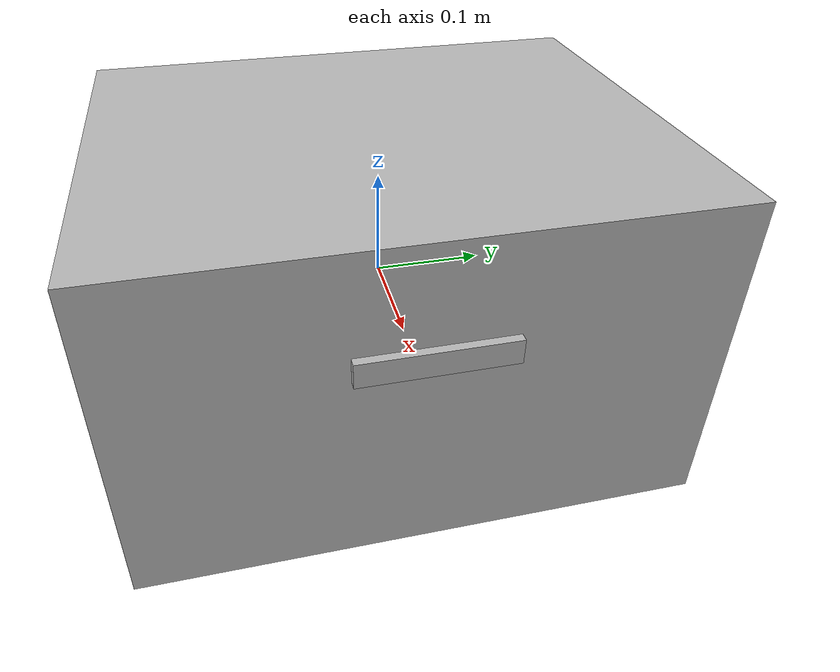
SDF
<sdf version='1.7'>
  <model name='benoit_pairob'>
    <link name='base_link'>
      <inertial>
        <pose>0.000698 0 0.000174 1.5708 -0 1.5708</pose>
        <mass>10.035</mass>
        <inertia>
          <ixx>0.210816</ixx>
          <ixy>-9.88011e-20</ixy>
          <ixz>-3.95205e-19</ixz>
          <iyy>0.344062</iyy>
          <iyz>-0.000348779</iyz>
          <izz>0.284421</izz>
        </inertia>
      </inertial>
      <collision name='base_link_collision'>
        <pose>0 0 0 0 -0 0</pose>
        <geometry>
          <box>
            <size>0.4 0.5 0.3</size>
          </box>
        </geometry>
        <surface>
          <contact>
            <ode/>
          </contact>
          <friction>
            <ode/>
          </friction>
        </surface>
      </collision>
      <collision name='base_link_fixed_joint_lump__camera_link_collision_1'>
        <pose>0.2 0 0.05 0 -0 0</pose>
        <geometry>
          <box>
            <size>0.015 0.13 0.022</size>
          </box>
        </geometry>
        <surface>
          <contact>
            <ode/>
          </contact>
          <friction>
            <ode/>
          </friction>
        </surface>
      </collision>
      <visual name='base_link_visual'>
        <pose>0 0 0 0 -0 0</pose>
        <geometry>
          <box>
            <size>0.4 0.5 0.3</size>
          </box>
        </geometry>
      </visual>
      <visual name='base_link_fixed_joint_lump__camera_link_visual_1'>
        <pose>0.2 0 0.05 0 -0 0</pose>
        <geometry>
          <box>
            <size>0.015 0.13 0.022</size>
          </box>
        </geometry>
      </visual>
      <sensor name='depth_camera' type='depth'>
        <visualize>1</visualize>
        <update_rate>30</update_rate>
        <camera name='camera'>
          <horizontal_fov>1.0472</horizontal_fov>
          <image>
            <width>640</width>
            <height>480</height>
            <format>R8G8B8</format>
          </image>
          <clip>
            <near>0.05</near>
            <far>8</far>
          </clip>
        </camera>
        <plugin name='depth_camera_controller' filename='libgazebo_ros_camera.so'>
          <baseline>0.2</baseline>
          <alwaysOn>1</alwaysOn>
          <updateRate>0.0</updateRate>
          <frame_name>camera_depth_frame</frame_name>
          <pointCloudCutoff>0.5</pointCloudCutoff>
          <pointCloudCutoffMax>8.0</pointCloudCutoffMax>
          <distortionK1>0</distortionK1>
          <distortionK2>0</distortionK2>
          <distortionK3>0</distortionK3>
          <distortionT1>0</distortionT1>
          <distortionT2>0</distortionT2>
          <CxPrime>0</CxPrime>
          <Cx>0</Cx>
          <Cy>0</Cy>
          <focalLength>0</focalLength>
          <hackBaseline>0</hackBaseline>
        </plugin>
        <pose>0.2 0 0.05 0 -0 0</pose>
      </sensor>
      <plugin filename='libmy_plugin.so' name='custom_plugin'>
        <ros>
          <namespace>/plugin</namespace>
        </ros>
        <robot_base_frame>base_link</robot_base_frame>
      </plugin>
    </link>
  </model>
</sdf>
